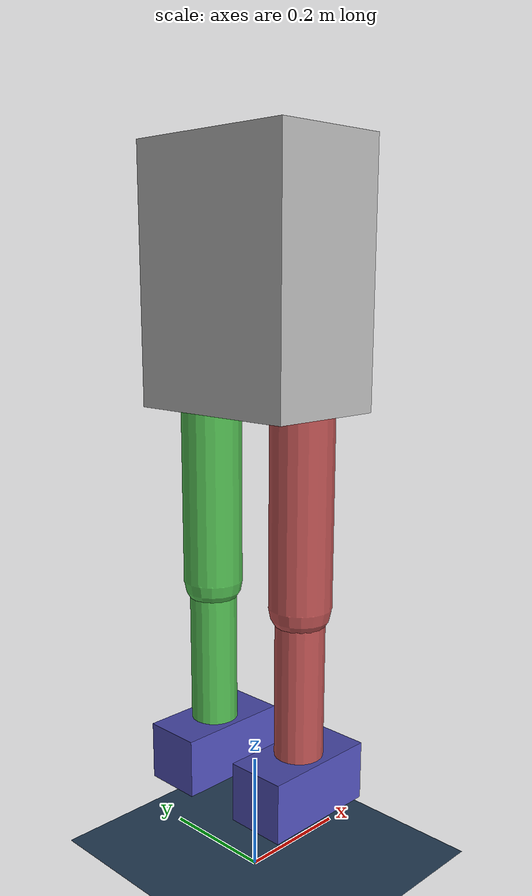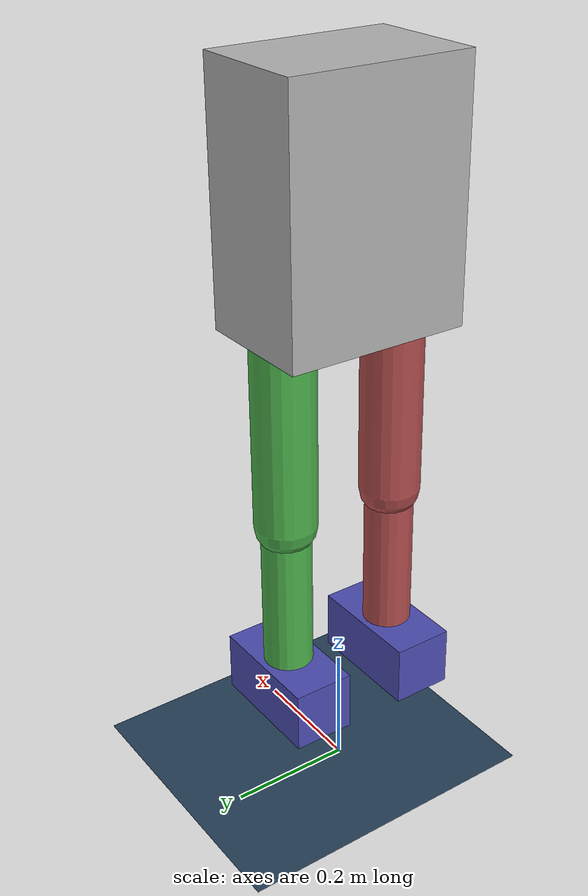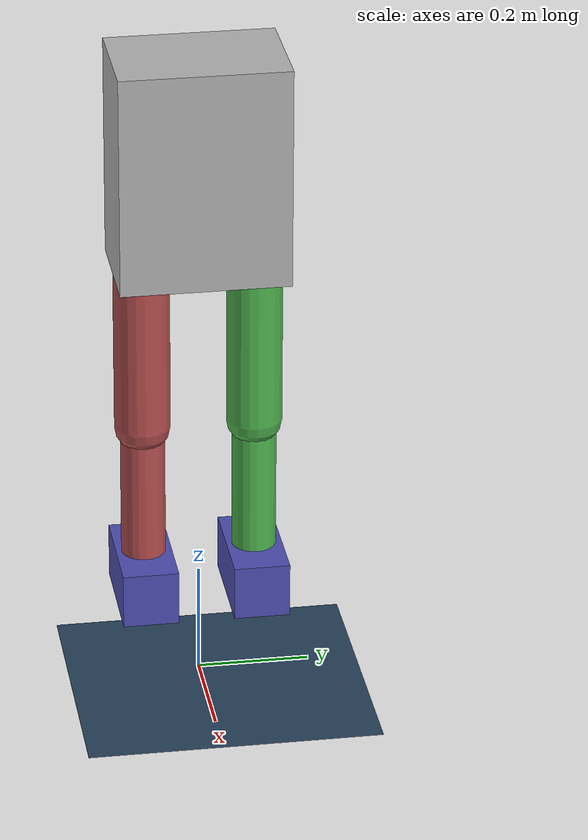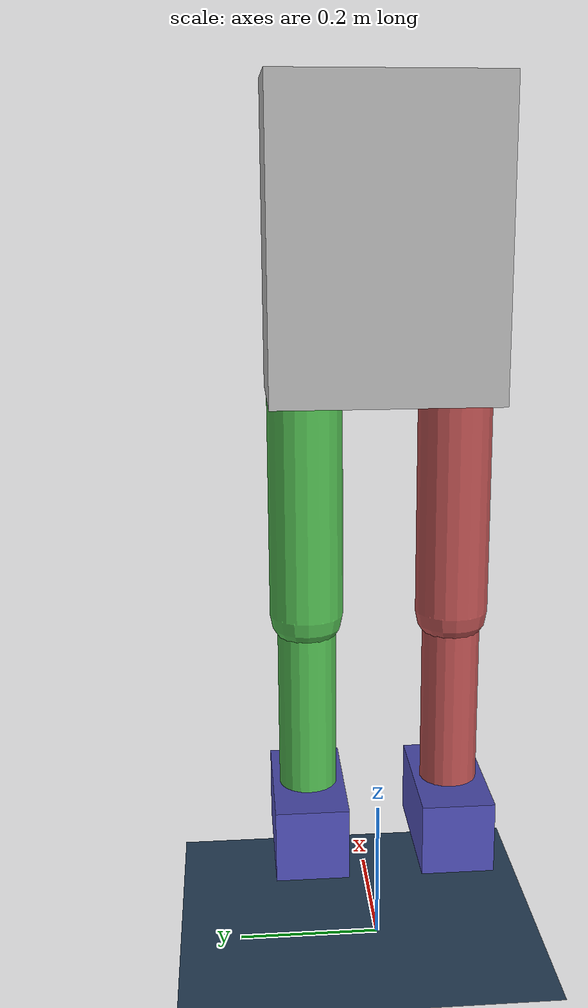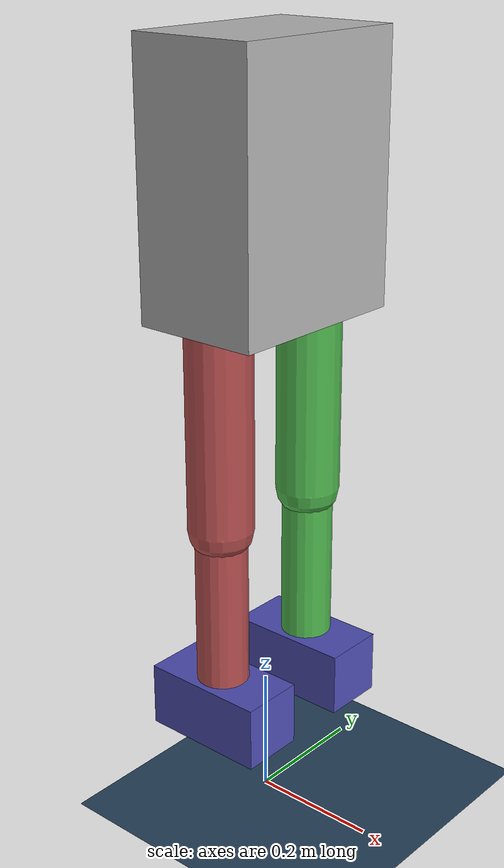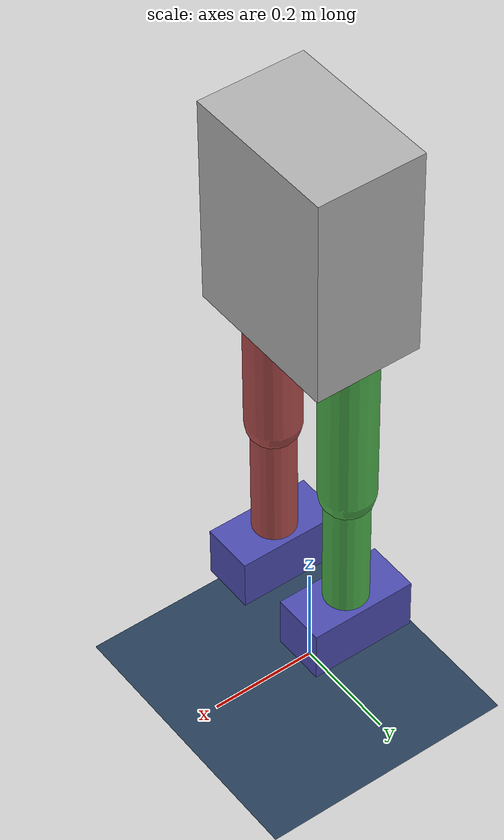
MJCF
<?xml version="1.0" encoding="utf-8"?>
<mujoco model="floating_exo">

  <compiler angle="degree" coordinate="local" inertiafromgeom="false"/>
  <option timestep="0.002" integrator="RK4"/>
  <size nstack="3000"/>

  <asset>
    <texture type="skybox" builtin="gradient" rgb1="0.3 0.5 0.7" rgb2="0 0 0" width="512" height="512"/>
    <texture name="grid" type="2d" builtin="checker" width="512" height="512" rgb1="0.2 0.3 0.4" rgb2="0.1 0.2 0.3" mark="edge" markrgb="0.8 0.8 0.8"/>
    <material name="grid" texture="grid" texrepeat="1 1" texuniform="true"/>
  </asset>

  <worldbody>
    <!-- Ground -->
    <geom name="floor" type="plane" pos="0 0 0" size="10 10 0.1" material="grid" condim="3"/>

    <!-- Torso (floating base, will be fixed via weld constraint) -->
    <body name="torso" pos="0 0 1.0">
      <!-- explicit inertial for torso: box 0.2×0.3×0.4, mass=40 kg -->
      <inertial pos="0 0 0" mass="40"
                diaginertia="0.833 0.667 0.433"/>
      <geom name="torso_geom" type="box" size="0.1 0.15 0.2" rgba="0.7 0.7 0.7 1"/>

      <!-- IMU site on torso -->
      <site name="torso_imu_site" pos="0 0 0" size="0.02" rgba="1 0 0 0.5"/>

      <!-- Right leg -->
      <body name="right_hip" pos="0 -0.1 -0.2">
        <!-- revolute hip -->
        <joint name="right_hip" type="hinge" axis="0 1 0" range="-60 60" damping="0.1"/>
        <!-- inertial: capsule length=0.3, r=0.05, mass=10 kg -->
        <inertial pos="0 0 -0.15" mass="10"
                  diaginertia="0.081 0.081 0.0125"/>
        <geom name="right_thigh" type="capsule" size="0.05"
              fromto="0 0 0 0 0 -0.3" rgba="0.7 0.3 0.3 1"/>

        <body name="right_knee" pos="0 0 -0.3">
          <joint name="right_knee" type="hinge" axis="0 1 0" range="0 90" damping="0.1"/>
          <!-- inertial: capsule length=0.3, r=0.04, mass=7 kg -->
          <inertial pos="0 0 -0.15" mass="7"
                    diaginertia="0.055 0.055 0.0056"/>
          <geom name="right_shank" type="capsule" size="0.04"
                fromto="0 0 0 0 0 -0.3" rgba="0.7 0.3 0.3 1"/>

          <body name="right_ankle" pos="0 0 -0.3">
            <joint name="right_ankle" type="hinge" axis="0 1 0" range="-45 45" damping="0.1"/>
            <!-- inertial: box 0.2×0.1×0.1, mass=2 kg -->
            <inertial pos="0 0 -0.05" mass="2"
                      diaginertia="0.0033 0.0083 0.0083"/>
            <geom name="right_foot" type="box" size="0.1 0.05 0.05"
                  rgba="0.3 0.3 0.7 1"/>
            <site name="right_foot_sensor_site" pos="0 0 -0.05" size="0.01" rgba="1 1 1 0"/>
          </body>
        </body>
      </body>

      <!-- Left leg (mirror of right) -->
      <body name="left_hip" pos="0 0.1 -0.2">
        <joint name="left_hip" type="hinge" axis="0 1 0" range="-60 60" damping="0.1"/>
        <inertial pos="0 0 -0.15" mass="10"
                  diaginertia="0.081 0.081 0.0125"/>
        <geom name="left_thigh" type="capsule" size="0.05"
              fromto="0 0 0 0 0 -0.3" rgba="0.3 0.7 0.3 1"/>

        <body name="left_knee" pos="0 0 -0.3">
          <joint name="left_knee" type="hinge" axis="0 1 0" range="0 90" damping="0.1"/>
          <inertial pos="0 0 -0.15" mass="7"
                    diaginertia="0.055 0.055 0.0056"/>
          <geom name="left_shank" type="capsule" size="0.04"
                fromto="0 0 0 0 0 -0.3" rgba="0.3 0.7 0.3 1"/>

          <body name="left_ankle" pos="0 0 -0.3">
            <joint name="left_ankle" type="hinge" axis="0 1 0" range="-45 45" damping="0.1"/>
            <inertial pos="0 0 -0.05" mass="2"
                      diaginertia="0.0033 0.0083 0.0083"/>
            <geom name="left_foot" type="box" size="0.1 0.05 0.05"
                  rgba="0.3 0.3 0.7 1"/>
            <site name="left_foot_sensor_site" pos="0 0 -0.05" size="0.01" rgba="1 1 1 0"/>
          </body>
        </body>
      </body>

    </body>
  </worldbody>

  <actuator>
    <general name="right_hip" joint="right_hip" ctrllimited="true" ctrlrange="-100 100"/>
    <general name="right_knee" joint="right_knee" ctrllimited="true" ctrlrange="-100 100"/>
    <general name="right_ankle" joint="right_ankle" ctrllimited="true" ctrlrange="-100 100"/>
    <general name="left_hip" joint="left_hip" ctrllimited="true" ctrlrange="-100 100"/>
    <general name="left_knee" joint="left_knee" ctrllimited="true" ctrlrange="-100 100"/>
    <general name="left_ankle" joint="left_ankle" ctrllimited="true" ctrlrange="-100 100"/>
  </actuator>

  <sensor>
    <!-- foot contact -->
    <force  name="right_foot_force"  site="right_foot_sensor_site"/>
    <torque name="right_foot_torque" site="right_foot_sensor_site"/>
    <force  name="left_foot_force"   site="left_foot_sensor_site"/>
    <torque name="left_foot_torque"  site="left_foot_sensor_site"/>

    <!-- torso IMU -->
    <framequat     name="torso_orientation" objtype="body" objname="torso"/>
    <accelerometer name="torso_accelerometer" site="torso_imu_site"/>
    <gyro          name="torso_gyro"         site="torso_imu_site"/>
  </sensor>

  </mujoco>
